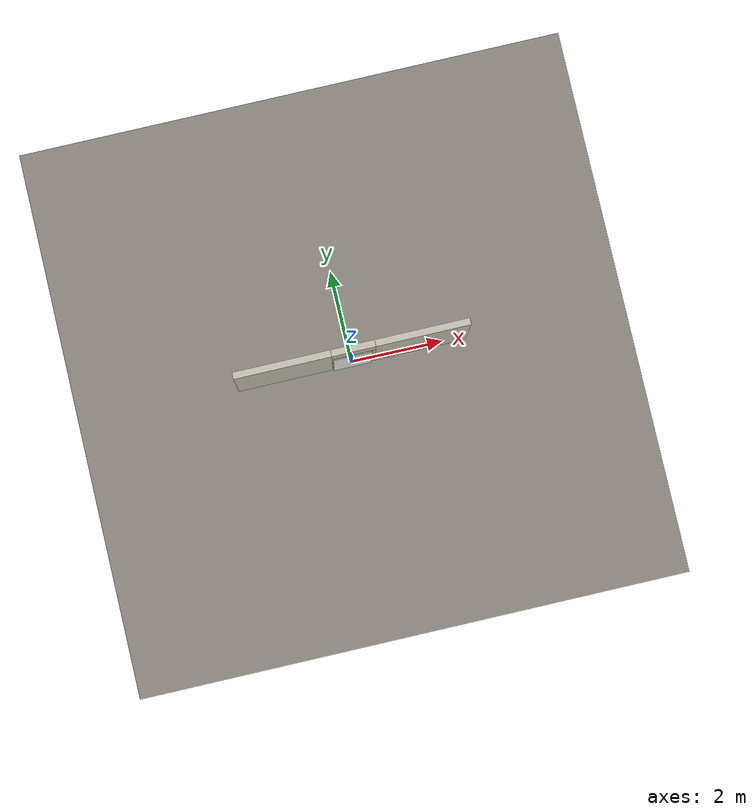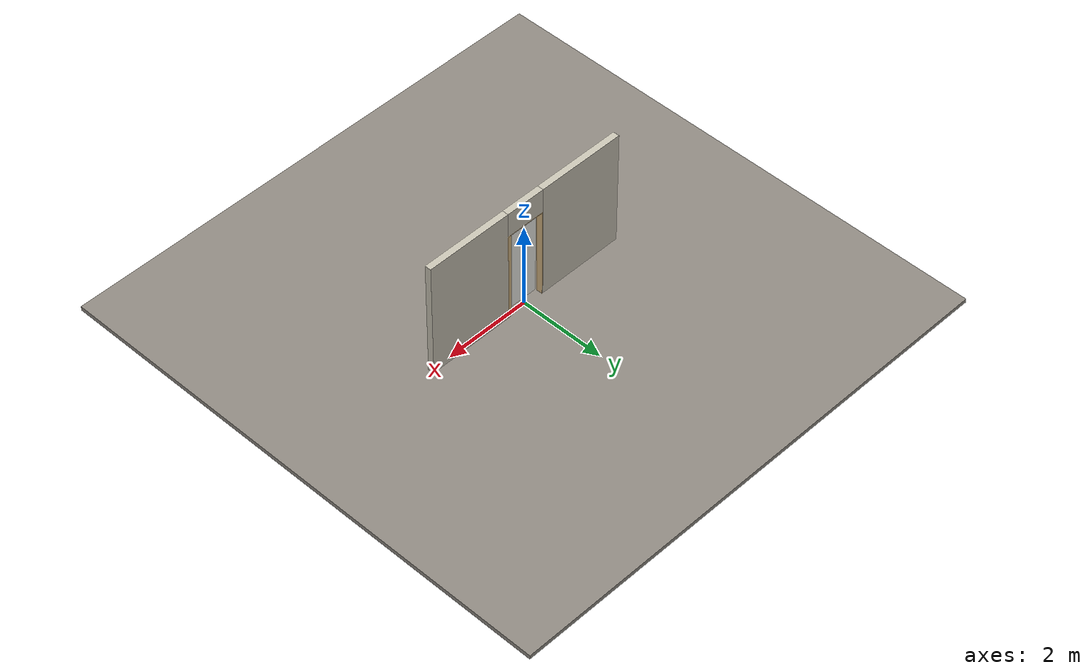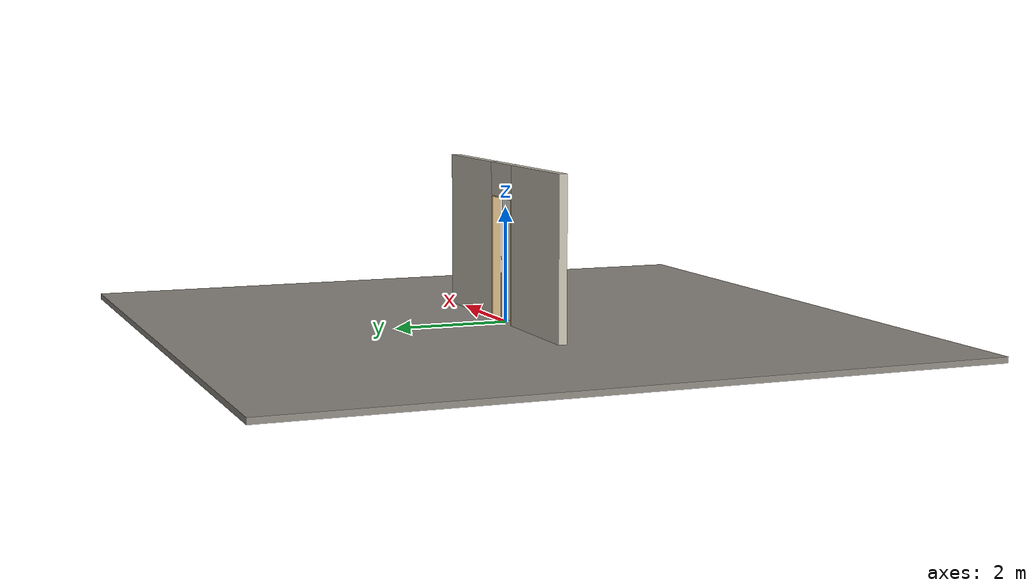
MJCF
<?xml version="1.0" ?>
<mujoco model="db0468_sliding_single_minimal">
  <compiler angle="radian" meshdir="../../hardware" texturedir="../../textures" autolimits="true" inertiafromgeom="false"/>
  <option timestep="0.002" integrator="implicitfast" cone="elliptic" impratio="10" noslip_iterations="3">
    <flag multiccd="enable"/>
  </option>
  <size memory="16M"/>
  <default>
    <geom condim="4" solref="0.005 1" solimp="0.95 0.99 0.001"/>
    <joint solreflimit="0.005 1" solimplimit="0.95 0.99 0.001"/>
    <tendon solreflimit="0.005 1"/>
    <equality solref="0.002 1"/>
  </default>
  <visual>
    <headlight ambient="0.4 0.4 0.4" diffuse="0.7 0.7 0.7" specular="0.2 0.2 0.2"/>
    <quality shadowsize="4096"/>
    <map znear="0.01" zfar="60"/>
  </visual>
  <asset>
    <mesh name="thumbturn_eb5c9899a3" file="thumbturn_eb5c9899a3.obj"/>
    <material name="mat_floor" rgba="0.55 0.53 0.5 1" specular="0.2" shininess="0.15" reflectance="0"/>
    <material name="mat_wall" rgba="0.78 0.76 0.7 1" specular="0.2" shininess="0.1" reflectance="0"/>
    <material name="mat_frame" rgba="0.82 0.7 0.5 1" specular="0.2" shininess="0.45" reflectance="0"/>
    <material name="mat_track" rgba="0.05 0.05 0.05 1" specular="0.38" shininess="0.3" reflectance="0.12"/>
    <material name="mat_leaf" rgba="0.93 0.93 0.91 1" specular="0.23" shininess="0.54" reflectance="0.02"/>
    <material name="mat_leaf_brace" rgba="0.837 0.837 0.819 1" specular="0.2" shininess="0.2" reflectance="0"/>
    <material name="mat_roller" rgba="0.65 0.66 0.68 1" specular="0.74" shininess="0.5" reflectance="0.36"/>
    <material name="mat_hook" rgba="0.75 0.76 0.77 1" specular="0.8" shininess="0.65" reflectance="0.4"/>
    <texture name="skybox" type="skybox" builtin="gradient" rgb1="0.6 0.7 0.85" rgb2="0.9 0.92 0.95" width="256" height="256"/>
  </asset>
  <worldbody>
    <light name="sun" pos="1.5 -2.5 4" dir="-0.3 0.5 -0.8" directional="true" diffuse="0.8 0.8 0.8" specular="0.3 0.3 0.3" castshadow="true"/>
    <light name="fill" pos="-1.5 2.5 3" dir="0.3 -0.5 -0.7" directional="true" diffuse="0.35 0.35 0.4" castshadow="false"/>
    <camera name="robot_view" pos="0 -2.644375 1.817425" xyaxes="1 0 0 0 0.26963 0.962964" fovy="52"/>
    <camera name="far_view" pos="0 2.644375 1.817425" xyaxes="-1 0 0 0 -0.26963 0.962964" fovy="52"/>
    <camera name="iso" pos="2.009725 -2.221275 2.240525" xyaxes="0.741536 0.670913 0 -0.242917 0.268487 0.932151" fovy="46"/>
    <camera name="detail_handle" pos="0.5265 -0.9285 1.5" xyaxes="0.97561 0.219512 0 -0.070934 0.315262 0.94635" fovy="38"/>
    <geom name="floor" type="box" size="6 6 0.05" pos="0 0 -0.05" material="mat_floor" group="0" contype="1" conaffinity="1" friction="0.8 0.005 0.0001" density="2400"/>
    <geom name="wall_left" type="box" size="1.03225 0.0725 1.377" pos="-1.46775 0 1.377" material="mat_wall" group="0" contype="1" conaffinity="1" friction="0.6 0.005 0.0001" density="800"/>
    <geom name="wall_right" type="box" size="1.00225 0.0725 1.377" pos="1.49775 0 1.377" material="mat_wall" group="0" contype="1" conaffinity="1" friction="0.6 0.005 0.0001" density="800"/>
    <geom name="wall_header" type="box" size="0.4655 0.0725 0.2905" pos="0.03 0 2.4635" material="mat_wall" group="0" contype="1" conaffinity="1" friction="0.6 0.005 0.0001" density="800"/>
    <geom name="jamb_l" type="box" size="0.0095 0.0725 1.077" pos="-0.426 0 1.077" material="mat_frame" group="0" contype="1" conaffinity="1" friction="0.6 0.005 0.0001" density="300"/>
    <geom name="jamb_head" type="box" size="0.4355 0.0725 0.0095" pos="0 0 2.1635" material="mat_frame" group="0" contype="1" conaffinity="1" friction="0.6 0.005 0.0001" density="300"/>
    <geom name="leaf_hook_keeper" type="box" size="0.008 0.015 0.006" pos="0.4245 -0.0955 1.08" material="mat_hook" group="0" contype="1" conaffinity="1" friction="0.6 0.005 0.0001" density="7900"/>
    <geom name="jamb_latch_0" type="box" size="0.0395 0.0725 1.077" pos="0.456 0 1.077" material="mat_frame" group="0" contype="1" conaffinity="1" friction="0.6 0.005 0.0001" density="300"/>
    <site name="approach_point" pos="0 -1.5 0" quat="1 0 0 0" size="0.05" rgba="0.2 0.9 0.2 0.5" group="4"/>
    <site name="goal_point" pos="0 1.5 0" quat="1 0 0 0" size="0.05" rgba="0.2 0.9 0.2 0.5" group="4"/>
    <site name="door_plane_center" pos="0 0 1.077" quat="1 0 0 0" size="0.02" rgba="0.2 0.9 0.2 0.5" group="4"/>
    <body name="leaf" pos="0 -0.0955 0">
      <inertial pos="0 0 1.079" mass="82.564774" quat="-0.5 0.5 0.5 0.5" diaginertia="4.54797736 31.333276622 35.880758594"/>
      <joint name="leaf_slide" type="slide" axis="-1 0 0" limited="true" range="0 0.813" damping="6.140788" frictionloss="21.115777" armature="0.5"/>
      <geom name="leaf_slab" type="box" size="0.4065 0.003 1.067" pos="0 0 1.079" material="mat_leaf" group="0" contype="1" conaffinity="1" friction="0.45 0.005 0.0001" density="1"/>
      <site name="leaf_edge_mid" pos="0.4065 0 1.079" quat="1 0 0 0" size="0.02" rgba="0.2 0.9 0.2 0.5" group="4"/>
      <body name="leaf_hook_thumbturn" pos="0.3465 -0.003 1.22">
        <inertial pos="0 -0.012928 0" mass="0.178946" quat="0.678504 0.199079 -0.199079 -0.678504" diaginertia="0.000026045 0.000026215 0.000032438"/>
        <joint name="leaf_hook_thumbturn_hinge" type="hinge" axis="0 1 0" limited="true" range="0 1" damping="0.05" frictionloss="0.25" armature="0.005" ref="1"/>
        <geom name="leaf_hook_tt_mesh" type="mesh" mesh="thumbturn_eb5c9899a3" pos="0 0 0" quat="0.620545 0.620545 0.339005 -0.339005" material="mat_hook" group="0" contype="1" conaffinity="1" friction="0.6 0.005 0.0001" density="7100"/>
        <geom name="leaf_hook_tt_col" type="box" size="0.006 0.012 0.016" pos="0 -0.02 0" quat="0.877583 0 0.479426 0" material="mat_hook" group="3" contype="1" conaffinity="1" rgba="0.8 0.3 0.3 0.25" friction="0.6 0.005 0.0001" density="7100"/>
        <site name="leaf_hook_tt_grip" pos="0 -0.03 0" quat="0.877583 0 0.479426 0" size="0.01" rgba="0.2 0.9 0.2 0.5" group="4"/>
      </body>
      <body name="leaf_hook" pos="0.4065 0 1.08">
        <inertial pos="0.006651 0 -0.027503" mass="0.072048" quat="-0.148813 -0.148813 0.69127 -0.69127" diaginertia="0.000005266 0.00001511 0.000019175"/>
        <joint name="leaf_hook_hinge" type="hinge" axis="0 1 0" limited="true" range="0 1" damping="0.05" frictionloss="0.1" armature="0.005" ref="1"/>
        <geom name="leaf_hook_arm" type="box" size="0.022 0.005 0.006" pos="-0.002657 0 -0.025474" quat="0.877583 0 0.479426 0" material="mat_hook" group="0" contype="1" conaffinity="1" friction="0.6 0.005 0.0001" density="7900"/>
        <geom name="leaf_hook_tip" type="box" size="0.006 0.005 0.016" pos="0.019451 0 -0.030293" quat="0.877583 0 0.479426 0" material="mat_hook" group="0" contype="1" conaffinity="1" friction="0.6 0.005 0.0001" density="7900"/>
      </body>
    </body>
  </worldbody>
  <equality>
    <joint name="leaf_hook_couple" joint1="leaf_hook_hinge" joint2="leaf_hook_thumbturn_hinge" polycoef="0 1 0 0 0" active="true"/>
  </equality>
  <sensor>
    <jointpos name="leaf_slide_pos" joint="leaf_slide"/>
    <jointvel name="leaf_slide_vel" joint="leaf_slide"/>
    <jointpos name="leaf_hook_thumbturn_hinge_pos" joint="leaf_hook_thumbturn_hinge"/>
    <jointvel name="leaf_hook_thumbturn_hinge_vel" joint="leaf_hook_thumbturn_hinge"/>
    <jointpos name="leaf_hook_hinge_pos" joint="leaf_hook_hinge"/>
    <jointvel name="leaf_hook_hinge_vel" joint="leaf_hook_hinge"/>
  </sensor>
</mujoco>
